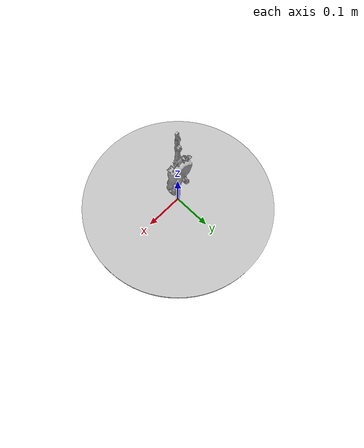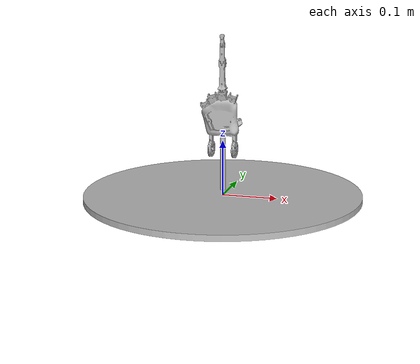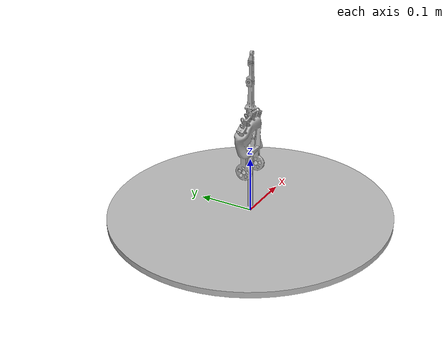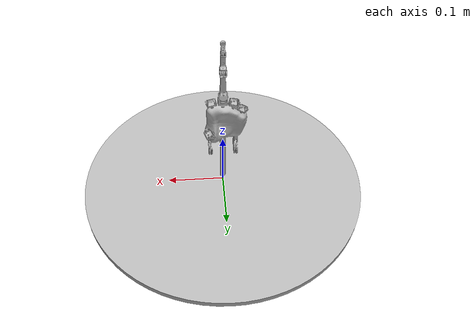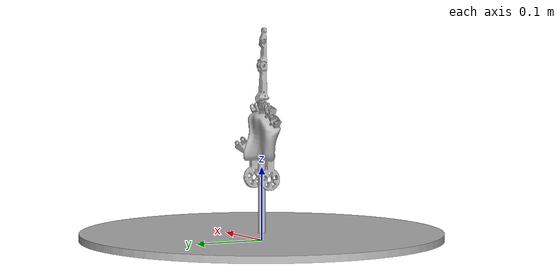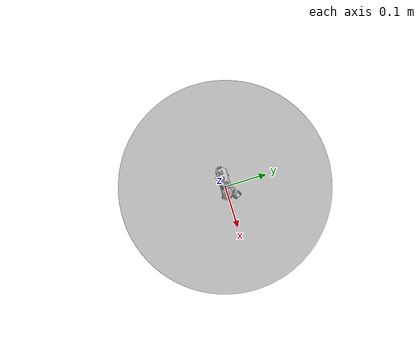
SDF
<?xml version="1.0" ?>
<sdf version="1.6">
	<model name="onefinger_model">
		<link name="palm">
			<self_collide>false</self_collide>
			<pose frame="">0.0 0.0 0.0 0.0 -0.0 0.0</pose>
			<inertial>
				<pose frame="">0.0 0.0 0.0 0 0 0</pose>
				<mass>15.519964907903148</mass>
				<inertia>
					<ixx>0.24262285264990688</ixx>
					<ixy>-2.430808412223566e-07</ixy>
					<ixz>-1.2762207780957539e-05</ixz>
					<iyy>0.24263990531080074</iyy>
					<iyz>1.2174311103174137e-05</iyz>
					<izz>0.48169284664366546</izz>
				</inertia>
			</inertial>
			<collision name="palm_collision">
				<geometry>
					<mesh>
						<uri>model://onefinger_model/meshes/CAD/palm.stl</uri>
						<scale>0.001 0.001 0.001</scale>
					</mesh>
				</geometry>
			</collision>
			<visual name="palm_visual">
				<geometry>
					<mesh>
						<uri>model://onefinger_model/meshes/CAD/palm.stl</uri>
						<scale>0.001 0.001 0.001</scale>
					</mesh>
				</geometry>
			</visual>
		</link>
		<link name="middle_limb0">
			<self_collide>false</self_collide>
			<pose frame="">-0.0004991921469496855 0.00013610652552636777 0.18755852808347404 0.0 -0.0 0.0</pose>
			<inertial>
				<pose frame="">0.0 0.0 0.0 0 0 0</pose>
				<mass>0.0004269894659846257</mass>
				<inertia>
					<ixx>1.5025922868003462e-05</ixx>
					<ixy>2.7854763203005757e-11</ixy>
					<ixz>-1.0556634808531522e-08</ixz>
					<iyy>1.5028772784498913e-05</iyy>
					<iyz>3.99779920333644e-08</iyz>
					<izz>7.548694193689041e-09</izz>
				</inertia>
			</inertial>
			<collision name="middle_limb0_collision">
				<geometry>
					<mesh>
						<uri>model://onefinger_model/meshes/CAD/middle_limb0.stl</uri>
						<scale>0.001 0.001 0.001</scale>
					</mesh>
				</geometry>
			</collision>
			<visual name="middle_limb0_visual">
				<geometry>
					<mesh>
						<uri>model://onefinger_model/meshes/CAD/middle_limb0.stl</uri>
						<scale>0.001 0.001 0.001</scale>
					</mesh>
				</geometry>
			</visual>
		</link>
		<link name="middle_limb1">
			<self_collide>false</self_collide>
			<pose frame="">-0.0005000315455473785 -0.0007585126741431222 0.21222996673889324 0.0 -0.0 0.0</pose>
			<inertial>
				<pose frame="">0.0 0.0 0.0 0 0 0</pose>
				<mass>0.0038294772166130257</mass>
				<inertia>
					<ixx>0.00017346272483632747</ixx>
					<ixy>-1.4519474587727355e-09</ixy>
					<ixz>6.502493344829902e-07</ixz>
					<iyy>0.00017346188578825906</iyy>
					<iyz>4.0638858484171594e-07</iyz>
					<izz>7.760649376785484e-08</izz>
				</inertia>
			</inertial>
			<collision name="middle_limb1_collision">
				<geometry>
					<mesh>
						<uri>model://onefinger_model/meshes/CAD/middle_limb1.stl</uri>
						<scale>0.001 0.001 0.001</scale>
					</mesh>
				</geometry>
			</collision>
			<visual name="middle_limb1_visual">
				<geometry>
					<mesh>
						<uri>model://onefinger_model/meshes/CAD/middle_limb1.stl</uri>
						<scale>0.001 0.001 0.001</scale>
					</mesh>
				</geometry>
			</visual>
		</link>
		<link name="middle_limb2">
			<self_collide>false</self_collide>
			<pose frame="">-0.0004998557310419226 -0.0015297485936947403 0.25197609288601464 0.0 -0.0 0.0</pose>
			<inertial>
				<pose frame="">0.0 0.0 0.0 0 0 0</pose>
				<mass>0.0016247916009061339</mass>
				<inertia>
					<ixx>0.00010334021153398423</ixx>
					<ixy>-1.2427063511546831e-09</ixy>
					<ixz>6.389987225702102e-07</ixz>
					<iyy>0.00010333596782115942</iyy>
					<iyz>2.0464882698253548e-07</iyz>
					<izz>2.4119069267847645e-08</izz>
				</inertia>
			</inertial>
			<collision name="middle_limb2_collision">
				<geometry>
					<mesh>
						<uri>model://onefinger_model/meshes/CAD/middle_limb2.stl</uri>
						<scale>0.001 0.001 0.001</scale>
					</mesh>
				</geometry>
			</collision>
			<visual name="middle_limb2_visual">
				<geometry>
					<mesh>
						<uri>model://onefinger_model/meshes/CAD/middle_limb2.stl</uri>
						<scale>0.001 0.001 0.001</scale>
					</mesh>
				</geometry>
			</visual>
		</link>
		<link name="middle_limb3">
			<self_collide>false</self_collide>
			<pose frame="">-0.0004999729777674903 -0.0022647134964555657 0.2791051538211128 0.0 -0.0 0.0</pose>
			<inertial>
				<pose frame="">0.0 0.0 0.0 0 0 0</pose>
				<mass>0.0006943749017269069</mass>
				<inertia>
					<ixx>5.412484912105515e-05</ixx>
					<ixy>-7.86283994031063e-10</ixy>
					<ixz>4.416937077548724e-07</ixz>
					<iyy>5.41210840117298e-05</iyy>
					<iyz>9.689678930560527e-08</iyz>
					<izz>8.572157563650909e-09</izz>
				</inertia>
			</inertial>
			<collision name="middle_limb3_collision">
				<geometry>
					<mesh>
						<uri>model://onefinger_model/meshes/CAD/middle_limb3.stl</uri>
						<scale>0.001 0.001 0.001</scale>
					</mesh>
				</geometry>
			</collision>
			<visual name="middle_limb3_visual">
				<geometry>
					<mesh>
						<uri>model://onefinger_model/meshes/CAD/middle_limb3.stl</uri>
						<scale>0.001 0.001 0.001</scale>
					</mesh>
				</geometry>
			</visual>
		</link>
		<joint name="joint0_middle" type="revolute">
			<parent>middle_limb0</parent>
			<child>middle_limb1</child>
			<pose frame="">3.154554692498535e-08 -0.0018395635372107147 -0.025464966738891946 0 0 0</pose>
			<axis>
				<xyz>-1.0058456433698627e-15 -0.8660254037844394 -0.5000000000000004</xyz>
				<limit>
					<lower>-0.6108652381980153</lower>
					<upper>0.6108652381980153</upper>
				</limit>
				<use_parent_model_frame>0</use_parent_model_frame>
			</axis>
		</joint>
		<joint name="joint1_middle" type="revolute">
			<parent>middle_limb1</parent>
			<child>middle_limb2</child>
			<pose frame="">0.005499855731041514 0.0015967358918019575 -0.012586092886013348 0 0 0</pose>
			<axis>
				<xyz>-0.9999999999999953 9.399690255184247e-16 9.020562075079432e-16</xyz>
				<limit>
					<lower>0.0</lower>
					<upper>1.9198621771937625</upper>
				</limit>
				<use_parent_model_frame>0</use_parent_model_frame>
			</axis>
		</joint>
		<joint name="joint2_middle" type="revolute">
			<parent>middle_limb2</parent>
			<child>middle_limb3</child>
			<pose frame="">0.0039999729777671226 0.0008317007945627472 -0.007965403821111394 0 0 0</pose>
			<axis>
				<xyz>-0.9999999999999958 9.399690255184251e-16 8.743006318923143e-16</xyz>
				<limit>
					<lower>0.0</lower>
					<upper>1.2217304763960306</upper>
				</limit>
				<use_parent_model_frame>0</use_parent_model_frame>
			</axis>
		</joint>
		<joint name="palm_middle" type="revolute">
			<parent>palm</parent>
			<child>middle_limb0</child>
			<pose frame="">-0.005000807853050769 -0.00013610652552689805 0.0007064719165269295 0 0 0</pose>
			<axis>
				<xyz>1.0000000000000084 -8.443806675403126e-16 -4.3021142204226157e-16</xyz>
				<limit>
					<lower>-1.2217304763960306</lower>
					<upper>0.3490658503988659</upper>
				</limit>
				<use_parent_model_frame>0</use_parent_model_frame>
			</axis>
		</joint>
		<plugin filename="libmusc_plugin.so" name="musc_plugin">
			<myoMuscle name="motor10">
				<link name="palm">
					<viaPoint type="FIXPOINT">-6.813993813636898e-17 -8.43769498715119e-17 0.11100000000000013</viaPoint>
					<viaPoint type="FIXPOINT">-0.001875785345637328 -0.003252935610497869 0.16761582204946773</viaPoint>
				</link>
				<link name="middle_limb3">
					<viaPoint type="FIXPOINT">-2.702223288457428e-08 0.004108308971718646 -0.005671098075707235</viaPoint>
					<viaPoint type="FIXPOINT">-0.0004954362251874155 0.003514101078380232 -0.0003401538211113575</viaPoint>
					<viaPoint type="FIXPOINT">-2.7022232885753894e-08 0.002732538713253395 0.0008452689288886006</viaPoint>
				</link>
				<link name="palm">
					<viaPoint type="FIXPOINT">0.0024831413282991144 -0.006386220544639663 0.17419888187404556</viaPoint>
					<viaPoint type="FIXPOINT">-7.785438960183911e-17 -0.007169862802135598 0.1803122790538816</viaPoint>
				</link>
				<link name="middle_limb1">
					<viaPoint type="FIXPOINT">3.154554691832401e-08 0.006579487502847496 -0.02228660390983233</viaPoint>
					<viaPoint type="FIXPOINT">-0.0008658261341268033 0.005424004534004086 -0.012188302538696441</viaPoint>
					<viaPoint type="FIXPOINT">3.1545546956418535e-08 0.0022955660306321 0.01689043806117578</viaPoint>
				</link>
				<link name="middle_limb2">
					<viaPoint type="FIXPOINT">-1.442689584762319e-07 0.00489480040082045 -0.00787596863135164</viaPoint>
					<viaPoint type="FIXPOINT">-0.0008001442689584609 0.0041168609667690355 -0.004000087692215999</viaPoint>
					<viaPoint type="FIXPOINT">0.0005998557310415388 0.003209513660100028 0.014107483208610177</viaPoint>
				</link>
			</myoMuscle>
			<myoMuscle name="motor11">
				<link name="palm">
					<viaPoint type="FIXPOINT">-6.813993813636898e-17 -8.43769498715119e-17 0.11100000000000013</viaPoint>
					<viaPoint type="FIXPOINT">-0.001875785345637328 -0.003252935610497869 0.16761582204946773</viaPoint>
					<viaPoint type="FIXPOINT">0.0024831413282991144 -0.006386220544639663 0.17419888187404556</viaPoint>
					<viaPoint type="FIXPOINT">-7.785438960183911e-17 -0.007169862802135598 0.1803122790538816</viaPoint>
				</link>
				<link name="middle_limb1">
					<viaPoint type="FIXPOINT">3.154554691832401e-08 0.006579487502847496 -0.02228660390983233</viaPoint>
					<viaPoint type="FIXPOINT">-0.0008658261341268033 0.005424004534004086 -0.012188302538696441</viaPoint>
					<viaPoint type="FIXPOINT">3.1545546956418535e-08 0.0022955660306321 0.01689043806117578</viaPoint>
					<viaPoint type="FIXPOINT">3.154554696273293e-08 -0.00417450002774969 0.024160033261108077</viaPoint>
				</link>
				<link name="middle_limb2">
					<viaPoint type="FIXPOINT">-1.4426895847338695e-07 -0.0034032641081980924 0.0032887821139866704</viaPoint>
				</link>
			</myoMuscle>
			<myoMuscle name="motor12">
				<link name="palm">
					<viaPoint type="FIXPOINT">-6.813993813636898e-17 -8.43769498715119e-17 0.11100000000000013</viaPoint>
					<viaPoint type="FIXPOINT">-0.002291287847478078 0.0007658038574662196 0.16761582204946773</viaPoint>
					<viaPoint type="FIXPOINT">0.00250104860319941 0.0017658038574662116 0.174569510094152</viaPoint>
				</link>
				<link name="middle_limb1">
					<viaPoint type="FIXPOINT">0.000993406118048085 -0.005289421560580153 -0.02028335635514804</viaPoint>
					<viaPoint type="FIXPOINT">0.000969030174786194 -0.0054215661252466655 -0.015164844441667321</viaPoint>
					<viaPoint type="FIXPOINT">3.154554692914868e-08 -0.004174500027749654 -0.00921496673889198</viaPoint>
				</link>
			</myoMuscle>
			<myoMuscle name="motor13">
				<link name="palm">
					<viaPoint type="FIXPOINT">0.0024990799497601195 -0.005000000000000292 0.16761582204946773</viaPoint>
					<viaPoint type="FIXPOINT">-0.0030210988114293103 -0.006530811275382944 0.17445573211832102</viaPoint>
					<viaPoint type="FIXPOINT">-0.004500000000000053 -0.0072508458547116544 0.182666134256213</viaPoint>
				</link>
				<link name="middle_limb1">
					<viaPoint type="FIXPOINT">3.1545546976749496e-08 -0.0004353894550680951 -0.017726063224302317</viaPoint>
					<viaPoint type="FIXPOINT">0.005458490898201298 -0.0004527340232663793 -0.014625650999498597</viaPoint>
					<viaPoint type="FIXPOINT">0.0046098714899733126 0.00032549997225035405 -0.010214966738891995</viaPoint>
				</link>
			</myoMuscle>
			<myoMuscle name="motor14">
				<link name="palm">
					<viaPoint type="FIXPOINT">-6.813993813636898e-17 -8.43769498715119e-17 0.11100000000000013</viaPoint>
					<viaPoint type="FIXPOINT">0.0024990799497601195 -0.005000000000000292 0.16761582204946773</viaPoint>
					<viaPoint type="FIXPOINT">0.0024831413282991144 -0.006386220544639663 0.17419888187404556</viaPoint>
					<viaPoint type="FIXPOINT">0.004499999999999982 -0.0072508458547116605 0.18266613425621298</viaPoint>
				</link>
				<link name="middle_limb1">
					<viaPoint type="FIXPOINT">3.1545546976749496e-08 -0.0004353894550680951 -0.017726063224302317</viaPoint>
					<viaPoint type="FIXPOINT">-0.005458427807107447 -0.00045273402326636707 -0.01462565099949856</viaPoint>
					<viaPoint type="FIXPOINT">-0.004609808398879453 0.00032549997225036294 -0.01021496673889196</viaPoint>
				</link>
			</myoMuscle>
		</plugin>
	</model>
</sdf>
